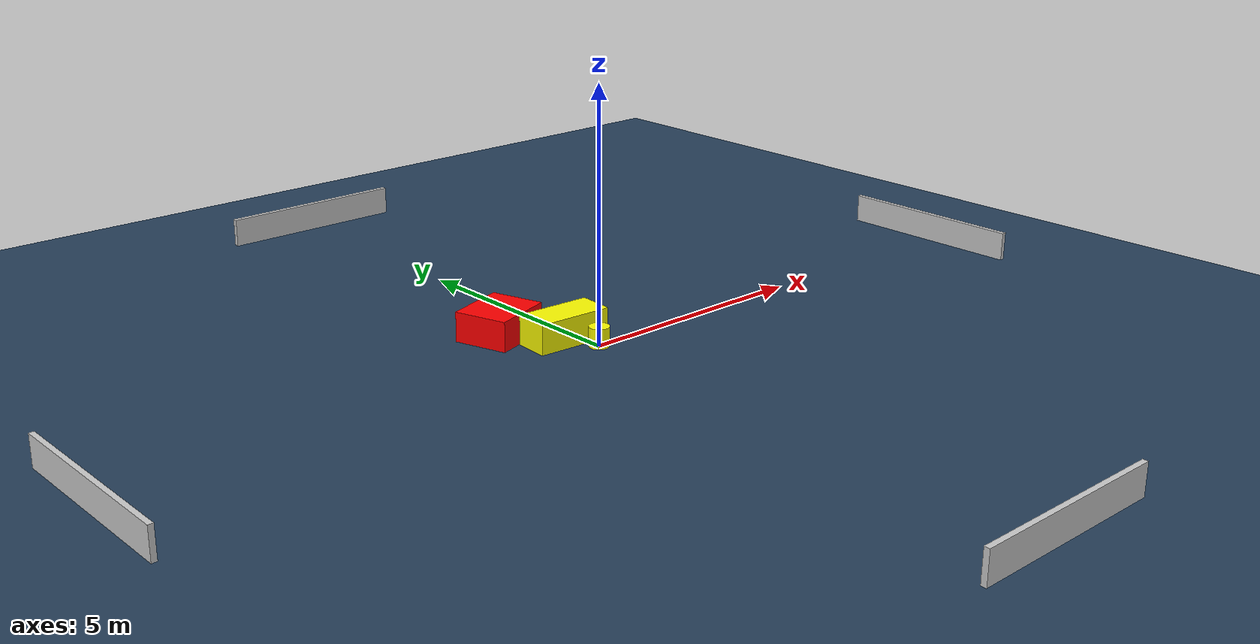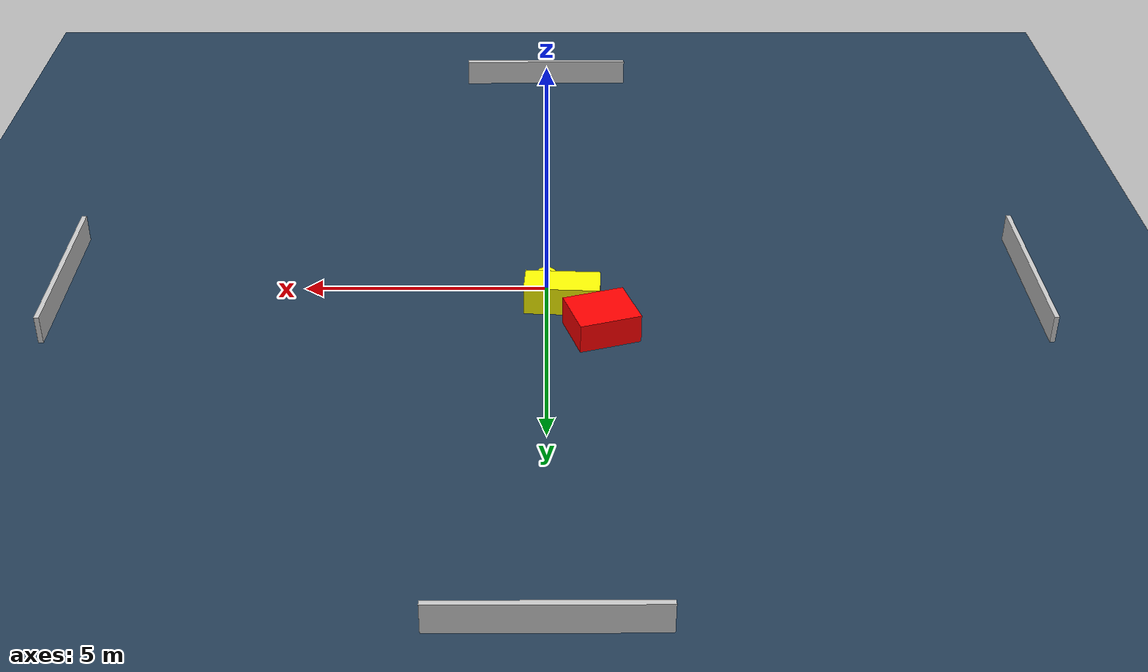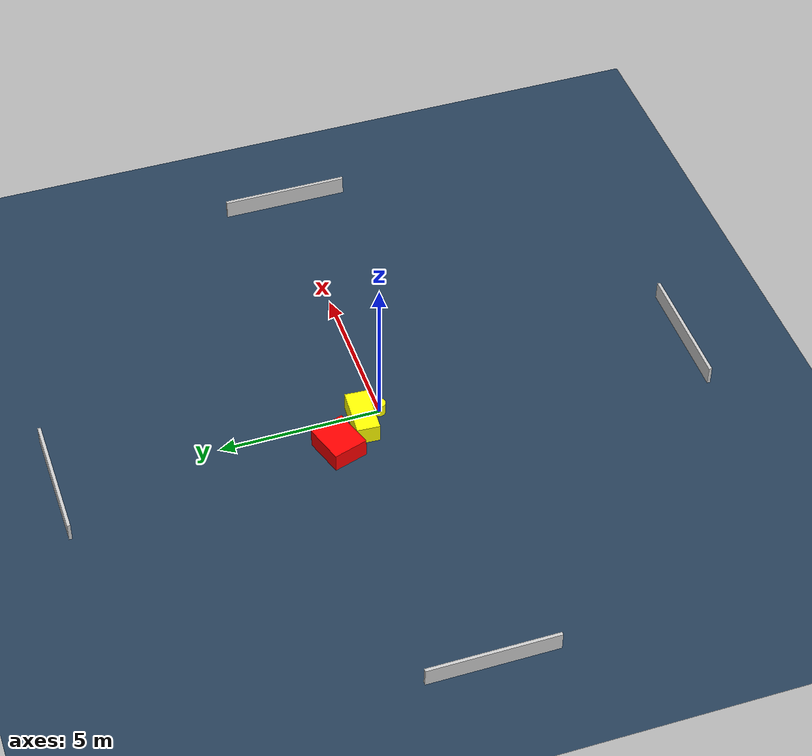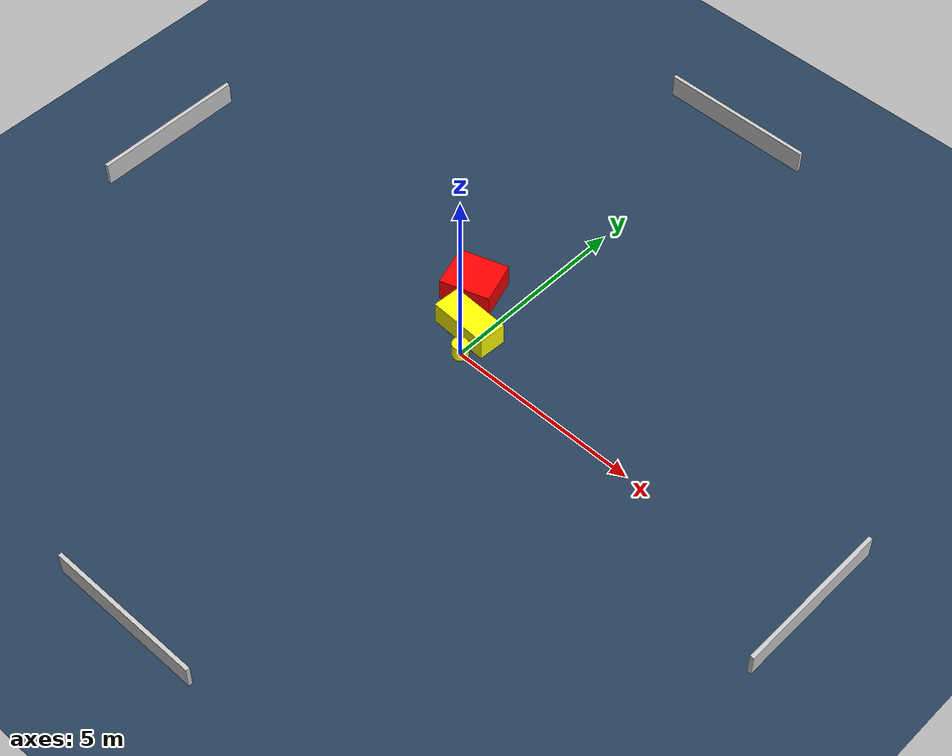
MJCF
<?xml version="1.0" ?>
<mujoco model="generated_environment">
  <option timestep="0.01" integrator="RK4" cone="elliptic"/>
  <default>
    <geom density="1"/>
  </default>
  <asset>
    <texture builtin="gradient" height="3072" name="skybox" rgb1="0.3 0.5 0.7" rgb2="0 0 0" type="skybox" width="512"/>
    <texture builtin="checker" height="300" name="groundplane" rgb1="0.2 0.3 0.4" rgb2="0.1 0.2 0.3" type="2d" width="300"/>
    <material name="groundplane" reflectance="0.2" texrepeat="5 5" texture="groundplane"/>
  </asset>
  <worldbody>
    <light dir="0 0 -1" directional="true" pos="0 0 1.5"/>
    <geom condim="3" friction="0.5 0.005 0.001" material="groundplane" name="floor" pos="0 0 0" size="0 0 0.05" type="plane"/>
    <body name="walls">
      <geom name="wall_1" condim="4" pos="-10.0 0.0 0.3" rgba="0.800000011920929 0.800000011920929 0.800000011920929 1.0" size="0.05 2.0 0.3" type="box"/>
      <geom name="wall_2" condim="4" pos="10.0 0.0 0.3" rgba="0.800000011920929 0.800000011920929 0.800000011920929 1.0" size="0.05 2.0 0.3" type="box"/>
      <geom name="wall_3" condim="4" pos="0.0 -10.0 0.3" rgba="0.800000011920929 0.800000011920929 0.800000011920929 1.0" size="2.0 0.05 0.3" type="box"/>
      <geom name="wall_4" condim="4" pos="0.0 10.0 0.3" rgba="0.800000011920929 0.800000011920929 0.800000011920929 1.0" size="2.0 0.05 0.3" type="box"/>
    </body>
    <body name="robot">
      <joint name="joint_x" type="slide" pos="0 0 0" axis="1 0 0"/>
      <joint name="joint_y" type="slide" pos="0 0 0" axis="0 1 0"/>
      <geom name="robot" type="cylinder" pos="0.0 0.0 0.2" size="0.2 0.2 0.0" mass="5.0" friction="1.0 0.005 0.0001" condim="4" rgba="1.0 1.0 0.0 1.0"/>
    </body>
    <body name="obstacle_1_movable">
      <geom name="obstacle_1_movable" condim="4" pos="-0.32020311487998393 0.6370582473421901 0.3" euler="0 0 176.63752584751919" friction="0.0 0.005 0.001" rgba="1.0 1.0 0.0 1.0" size="0.7708458875717732 0.35901444188803633 0.3" type="box" mass="0.1"/>
      <joint type="free"/>
    </body>
    <body name="obstacle_2_static">
      <geom name="obstacle_2_static" condim="4" pos="-1.0944879035841906 1.6234439209326819 0.3" euler="0 0 107.68917943603061" friction="0.0 0.005 0.001" rgba="1.0 0.0 0.0 1.0" size="0.5525774859847166 0.6354911030447441 0.3" type="box"/>
    </body>
  </worldbody>
  <actuator>
    <motor name="actuator_x" joint="joint_x" gear="1" ctrlrange="-1 1"/>
    <motor name="actuator_y" joint="joint_y" gear="1" ctrlrange="-1 1"/>
  </actuator>
</mujoco>
